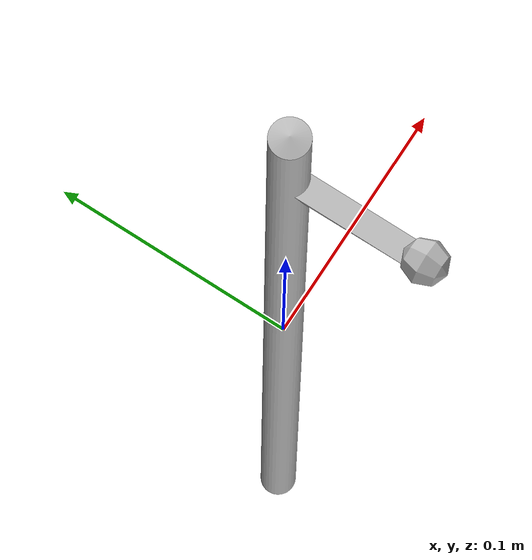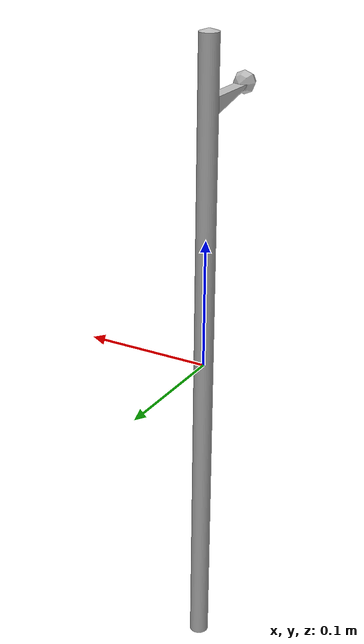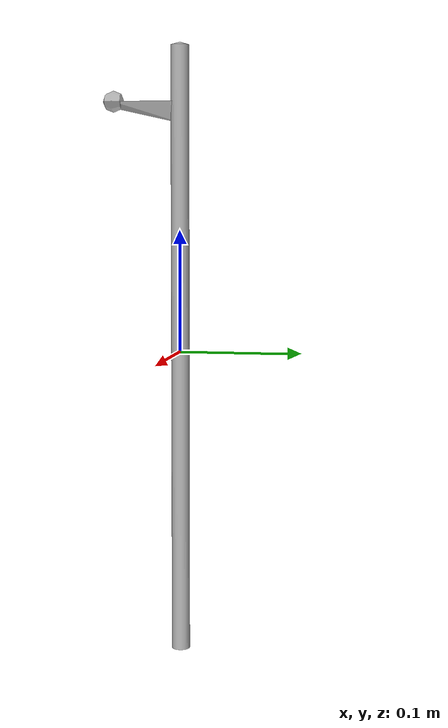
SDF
<?xml version="1.0"?>
<sdf version="1.6">
  <model name="sensor_post">
    <pose>0 0 0 1.57 0 0</pose>
    <!-- Post link -->
    <link name="post_link">
      <visual name="post_visual">
        <pose>0 -0.2515 0 0 0 0</pose>
        <geometry>
          <mesh>
            <uri>model://sensor_post/mesh/sensor_post.dae</uri>
          </mesh>
        </geometry>
      </visual>
      <collision name="post_collision">
        <pose>0 0 0 1.57 0 0</pose>
        <geometry>
          <cylinder>
            <radius>0.0076</radius>
            <length>0.503</length>
          </cylinder>
        </geometry>
      </collision>
      <inertial>
        <pose>0 0 0 1.57 0 0</pose>
        <mass>0.5</mass>
        <inertia>
          <ixx>0.010549261666667</ixx>
          <iyy>0.010549261666667</iyy>
          <izz>0.000014440000000</izz>
          <ixy>0</ixy>
          <ixz>0</ixz>
          <iyz>0</iyz>
        </inertia>
      </inertial>
    </link>

    <!-- Arm link -->
    <link name="arm_link">
      <pose>0 0.2 0.03 0 0 0</pose>
      <visual name="arm_visual">
        <pose>0 -0.016 -0.035 0 0 0 </pose>
        <geometry>
          <mesh>
            <uri>model://sensor_post/mesh/sensor_post_arm.dae</uri>
          </mesh>
        </geometry>
      </visual>
      <collision name="arm_collision">
        <pose>0 0 0 -0.15 0 0 </pose>
        <geometry>
          <cylinder>
            <radius>0.008</radius>
            <length>0.065</length>
          </cylinder>
        </geometry>
      </collision>
      <inertial>
        <pose>0 0 0 -0.15 0 0 </pose>
        <mass>0.1</mass>
        <inertia>
          <ixx>0.00003680833</ixx>
          <iyy>0.00003680833</iyy>
          <izz>0.00000320000</izz>
          <ixy>0</ixy>
          <ixz>0</ixz>
          <iyz>0</iyz>
        </inertia>
      </inertial>
    </link>

    <!-- Post to arm joint -->
    <joint name="post_to_arm_joint" type="fixed">
      <parent>post_link</parent>
      <child>arm_link</child>
      <pose>0 0 -0.03 0 0 0</pose>
    </joint>

  </model>
</sdf>
